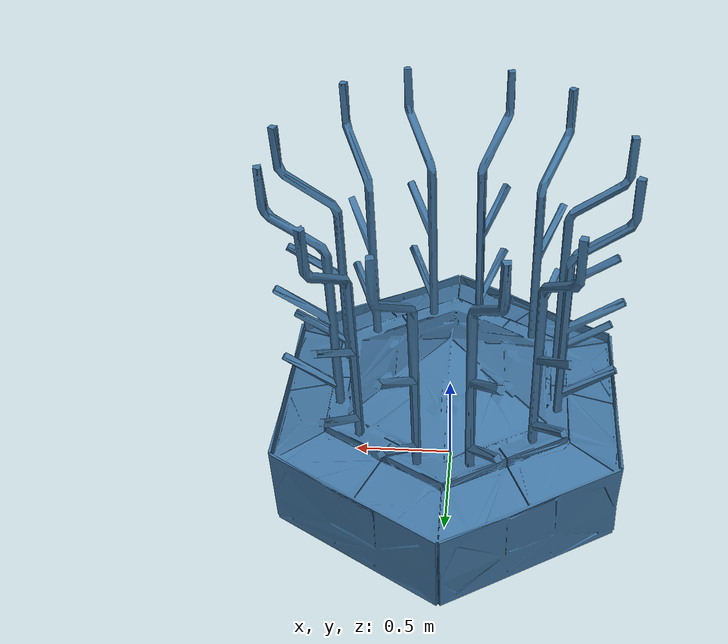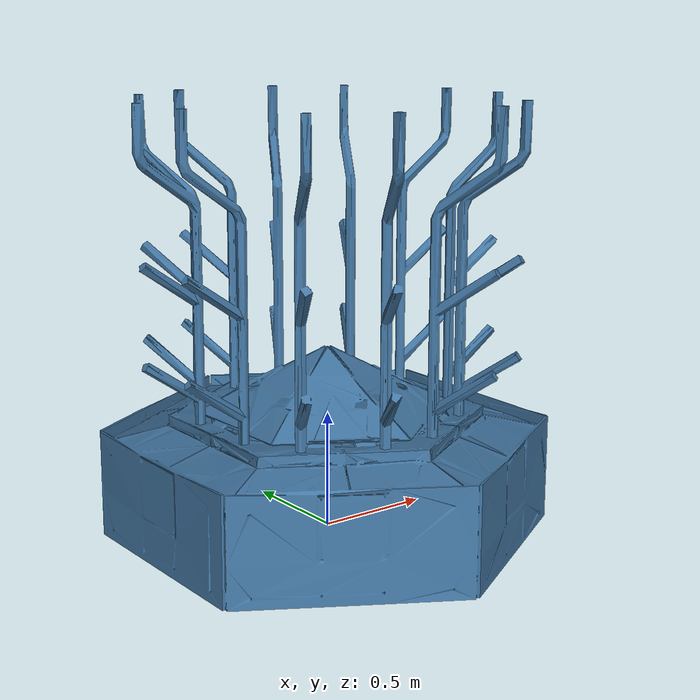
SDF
<?xml version="1.0"?>
<sdf version="1.8">
  <model name="reefscape_reef">
    <static>true</static>

    <link name="link">
      <visual name="visual">
        <geometry>
          <mesh>
            <uri>meshes/reef.stl</uri>
            <scale>1 1 1</scale>
          </mesh>
        </geometry>
        <material>
          <ambient>0.12 0.22 0.31 1</ambient>
          <diffuse>0.25 0.45 0.62 1</diffuse>
        </material>
      </visual>

      <collision name="collision">
        <geometry>
          <mesh>
            <uri>meshes/reef.stl</uri>
            <scale>1 1 1</scale>
          </mesh>
        </geometry>
      </collision>
    </link>
  </model>
</sdf>
